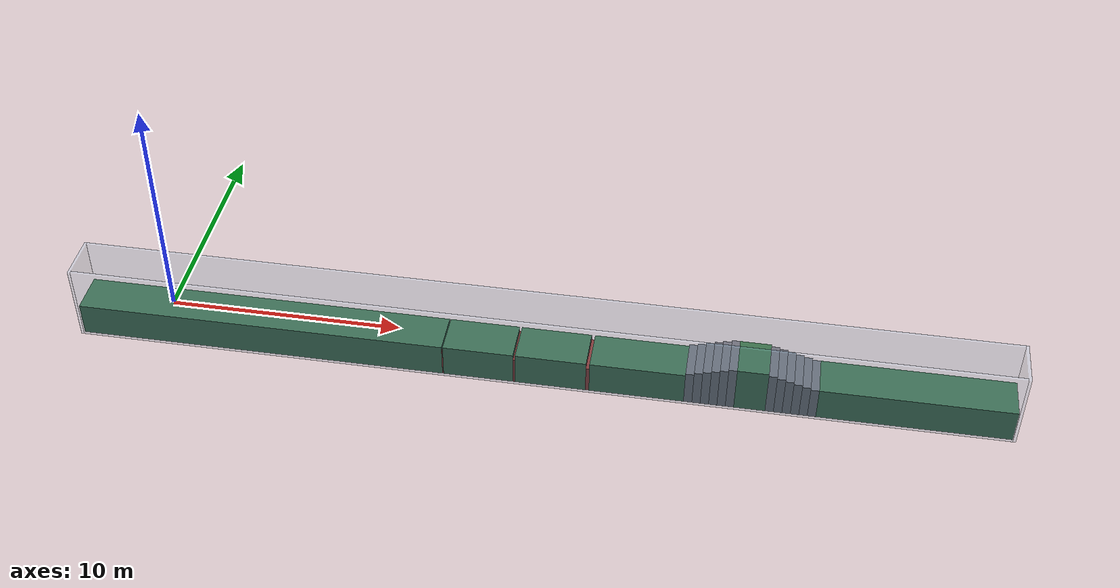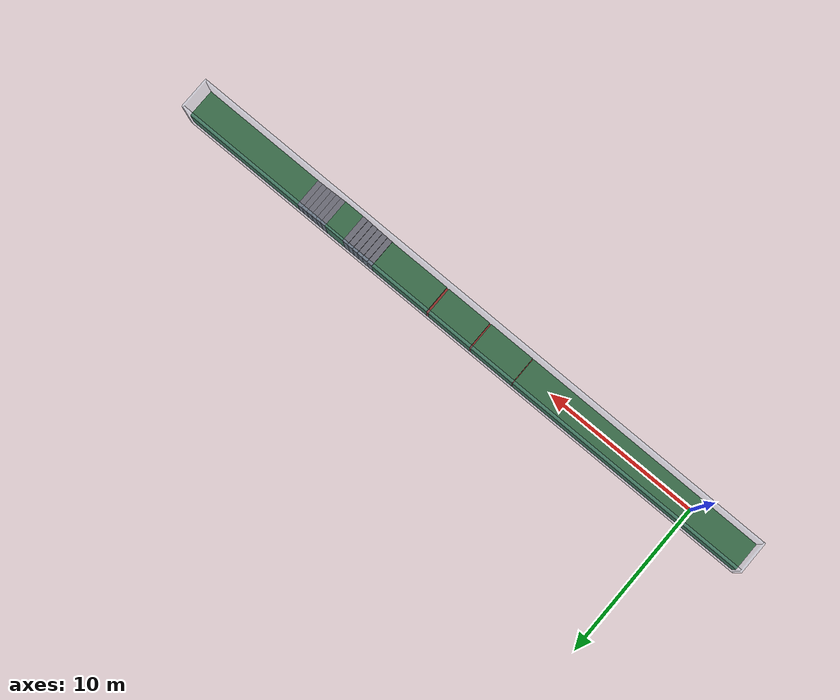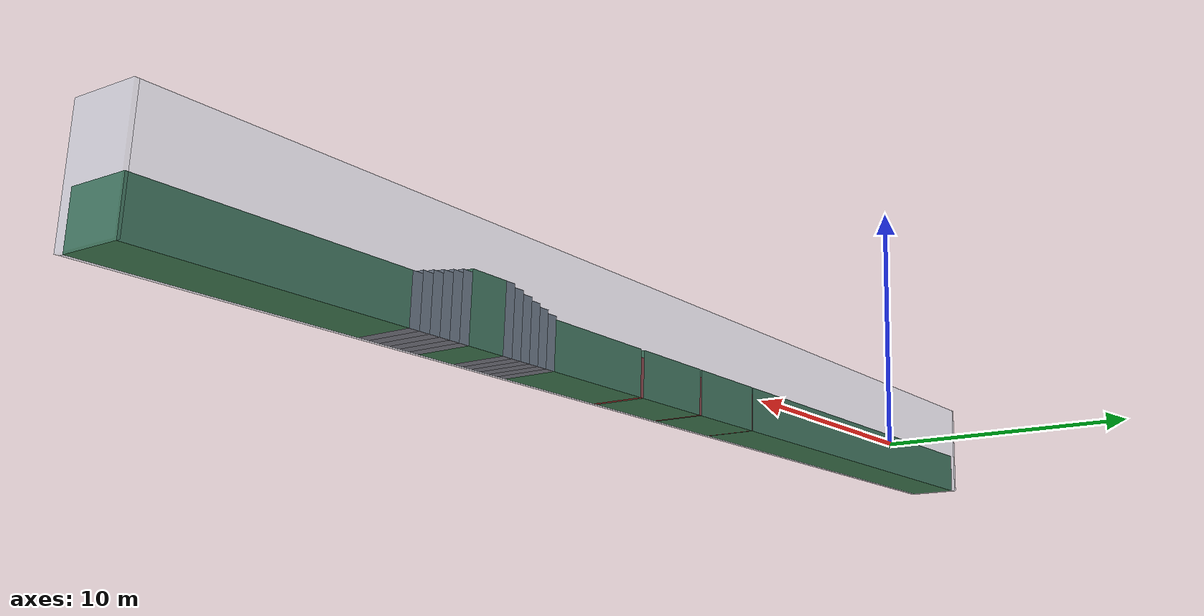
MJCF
<?xml version="1.0" encoding="utf-8"?>
<mujoco model="vrl progression terrain">
  <!-- +X course: 12m ahead of spawn, 5/10/15cm gaps, 4m approach, 10cm stairs. -->
  <statistic center="15.9 0 0.4" extent="22"/>
  <visual>
    <headlight diffuse="0.7 0.7 0.7" ambient="0.25 0.25 0.25"/>
    <global azimuth="-125" elevation="-22"/>
  </visual>
  <default>
    <default class="course">
      <geom type="box" friction="0.8 0.8 0.8" priority="2" contype="1" conaffinity="1"/>
    </default>
    <default class="guard">
      <geom type="box" friction="0.3 0.005 0.0001" contype="1" conaffinity="1" rgba="0.55 0.8 0.95 0.18"/>
    </default>
  </default>
  <worldbody>
    <light pos="15 0 8" dir="0 0 -1" directional="true"/>
    <geom name="start_flat" class="course" pos="4.000 0 -0.750" size="8.000 0.90 0.750" rgba="0.22 0.42 0.28 1"/>
    <geom name="gap_05_bottom" class="course" pos="12.025 0 -0.875" size="0.025 0.90 0.625" rgba="0.55 0.18 0.16 1"/>
    <geom name="flat_after_gap_05" class="course" pos="13.550 0 -0.750" size="1.500 0.90 0.750" rgba="0.22 0.42 0.28 1"/>
    <geom name="gap_10_bottom" class="course" pos="15.100 0 -0.875" size="0.050 0.90 0.625" rgba="0.55 0.18 0.16 1"/>
    <geom name="flat_after_gap_10" class="course" pos="16.650 0 -0.750" size="1.500 0.90 0.750" rgba="0.22 0.42 0.28 1"/>
    <geom name="gap_15_bottom" class="course" pos="18.225 0 -0.875" size="0.075 0.90 0.625" rgba="0.55 0.18 0.16 1"/>
    <geom name="flat_before_stairs" class="course" pos="20.300 0 -0.750" size="2.000 0.90 0.750" rgba="0.22 0.42 0.28 1"/>
    <geom name="up1" class="course" pos="22.475 0 -0.700" size="0.175 0.90 0.800" rgba="0.42 0.42 0.46 1"/>
    <geom name="up2" class="course" pos="22.825 0 -0.650" size="0.175 0.90 0.850" rgba="0.42 0.42 0.46 1"/>
    <geom name="up3" class="course" pos="23.175 0 -0.600" size="0.175 0.90 0.900" rgba="0.42 0.42 0.46 1"/>
    <geom name="up4" class="course" pos="23.525 0 -0.550" size="0.175 0.90 0.950" rgba="0.42 0.42 0.46 1"/>
    <geom name="up5" class="course" pos="23.875 0 -0.500" size="0.175 0.90 1.000" rgba="0.42 0.42 0.46 1"/>
    <geom name="up6" class="course" pos="24.225 0 -0.450" size="0.175 0.90 1.050" rgba="0.42 0.42 0.46 1"/>
    <geom name="top" class="course" pos="25.050 0 -0.450" size="0.650 0.90 1.050" rgba="0.22 0.42 0.28 1"/>
    <geom name="down1" class="course" pos="25.875 0 -0.500" size="0.175 0.90 1.000" rgba="0.42 0.42 0.46 1"/>
    <geom name="down2" class="course" pos="26.225 0 -0.550" size="0.175 0.90 0.950" rgba="0.42 0.42 0.46 1"/>
    <geom name="down3" class="course" pos="26.575 0 -0.600" size="0.175 0.90 0.900" rgba="0.42 0.42 0.46 1"/>
    <geom name="down4" class="course" pos="26.925 0 -0.650" size="0.175 0.90 0.850" rgba="0.42 0.42 0.46 1"/>
    <geom name="down5" class="course" pos="27.275 0 -0.700" size="0.175 0.90 0.800" rgba="0.42 0.42 0.46 1"/>
    <geom name="down6" class="course" pos="27.625 0 -0.750" size="0.175 0.90 0.750" rgba="0.42 0.42 0.46 1"/>
    <geom name="finish_flat" class="course" pos="31.800 0 -0.750" size="4.000 0.90 0.750" rgba="0.22 0.42 0.28 1"/>
    <!-- Inner faces at y=+/-0.90; solid walls extend from z=-1.5 to 2.0m. -->
    <geom name="guard_left" class="guard" pos="15.9 0.96 0.25" size="19.9 0.06 1.75"/>
    <geom name="guard_right" class="guard" pos="15.9 -0.96 0.25" size="19.9 0.06 1.75"/>
    <geom name="guard_start" class="guard" pos="-4.06 0 0.25" size="0.06 1.02 1.75"/>
    <geom name="guard_finish" class="guard" pos="35.86 0 0.25" size="0.06 1.02 1.75"/>
  </worldbody>
  <contact>
    <pair geom1="RR" geom2="start_flat"/>
    <pair geom1="RL" geom2="start_flat"/>
    <pair geom1="FR" geom2="start_flat"/>
    <pair geom1="FL" geom2="start_flat"/>
    <pair geom1="RR" geom2="gap_05_bottom"/>
    <pair geom1="RL" geom2="gap_05_bottom"/>
    <pair geom1="FR" geom2="gap_05_bottom"/>
    <pair geom1="FL" geom2="gap_05_bottom"/>
    <pair geom1="RR" geom2="flat_after_gap_05"/>
    <pair geom1="RL" geom2="flat_after_gap_05"/>
    <pair geom1="FR" geom2="flat_after_gap_05"/>
    <pair geom1="FL" geom2="flat_after_gap_05"/>
    <pair geom1="RR" geom2="gap_10_bottom"/>
    <pair geom1="RL" geom2="gap_10_bottom"/>
    <pair geom1="FR" geom2="gap_10_bottom"/>
    <pair geom1="FL" geom2="gap_10_bottom"/>
    <pair geom1="RR" geom2="flat_after_gap_10"/>
    <pair geom1="RL" geom2="flat_after_gap_10"/>
    <pair geom1="FR" geom2="flat_after_gap_10"/>
    <pair geom1="FL" geom2="flat_after_gap_10"/>
    <pair geom1="RR" geom2="gap_15_bottom"/>
    <pair geom1="RL" geom2="gap_15_bottom"/>
    <pair geom1="FR" geom2="gap_15_bottom"/>
    <pair geom1="FL" geom2="gap_15_bottom"/>
    <pair geom1="RR" geom2="flat_before_stairs"/>
    <pair geom1="RL" geom2="flat_before_stairs"/>
    <pair geom1="FR" geom2="flat_before_stairs"/>
    <pair geom1="FL" geom2="flat_before_stairs"/>
    <pair geom1="RR" geom2="up1"/>
    <pair geom1="RL" geom2="up1"/>
    <pair geom1="FR" geom2="up1"/>
    <pair geom1="FL" geom2="up1"/>
    <pair geom1="RR" geom2="up2"/>
    <pair geom1="RL" geom2="up2"/>
    <pair geom1="FR" geom2="up2"/>
    <pair geom1="FL" geom2="up2"/>
    <pair geom1="RR" geom2="up3"/>
    <pair geom1="RL" geom2="up3"/>
    <pair geom1="FR" geom2="up3"/>
    <pair geom1="FL" geom2="up3"/>
    <pair geom1="RR" geom2="up4"/>
    <pair geom1="RL" geom2="up4"/>
    <pair geom1="FR" geom2="up4"/>
    <pair geom1="FL" geom2="up4"/>
    <pair geom1="RR" geom2="up5"/>
    <pair geom1="RL" geom2="up5"/>
    <pair geom1="FR" geom2="up5"/>
    <pair geom1="FL" geom2="up5"/>
    <pair geom1="RR" geom2="up6"/>
    <pair geom1="RL" geom2="up6"/>
    <pair geom1="FR" geom2="up6"/>
    <pair geom1="FL" geom2="up6"/>
    <pair geom1="RR" geom2="top"/>
    <pair geom1="RL" geom2="top"/>
    <pair geom1="FR" geom2="top"/>
    <pair geom1="FL" geom2="top"/>
    <pair geom1="RR" geom2="down1"/>
    <pair geom1="RL" geom2="down1"/>
    <pair geom1="FR" geom2="down1"/>
    <pair geom1="FL" geom2="down1"/>
    <pair geom1="RR" geom2="down2"/>
    <pair geom1="RL" geom2="down2"/>
    <pair geom1="FR" geom2="down2"/>
    <pair geom1="FL" geom2="down2"/>
    <pair geom1="RR" geom2="down3"/>
    <pair geom1="RL" geom2="down3"/>
    <pair geom1="FR" geom2="down3"/>
    <pair geom1="FL" geom2="down3"/>
    <pair geom1="RR" geom2="down4"/>
    <pair geom1="RL" geom2="down4"/>
    <pair geom1="FR" geom2="down4"/>
    <pair geom1="FL" geom2="down4"/>
    <pair geom1="RR" geom2="down5"/>
    <pair geom1="RL" geom2="down5"/>
    <pair geom1="FR" geom2="down5"/>
    <pair geom1="FL" geom2="down5"/>
    <pair geom1="RR" geom2="down6"/>
    <pair geom1="RL" geom2="down6"/>
    <pair geom1="FR" geom2="down6"/>
    <pair geom1="FL" geom2="down6"/>
    <pair geom1="RR" geom2="finish_flat"/>
    <pair geom1="RL" geom2="finish_flat"/>
    <pair geom1="FR" geom2="finish_flat"/>
    <pair geom1="FL" geom2="finish_flat"/>
  </contact>
</mujoco>
